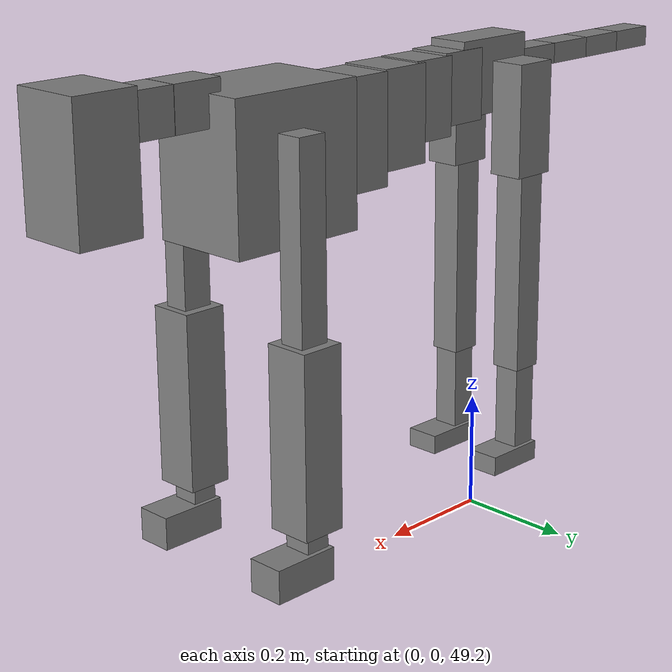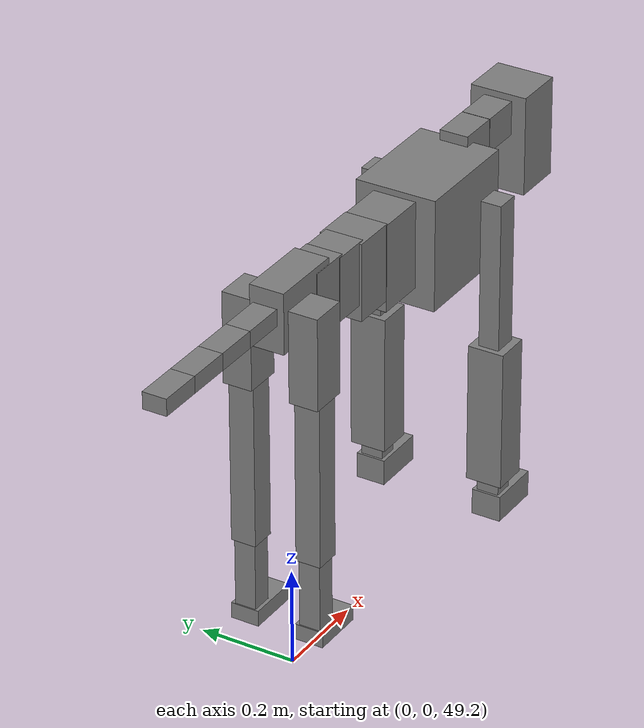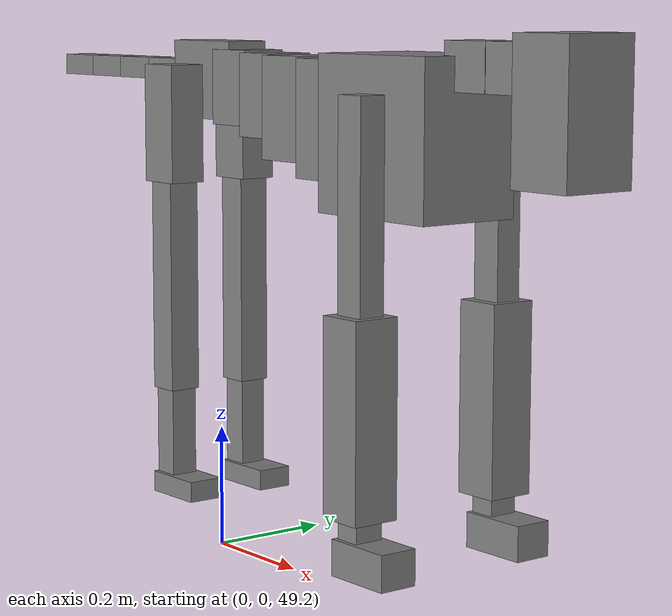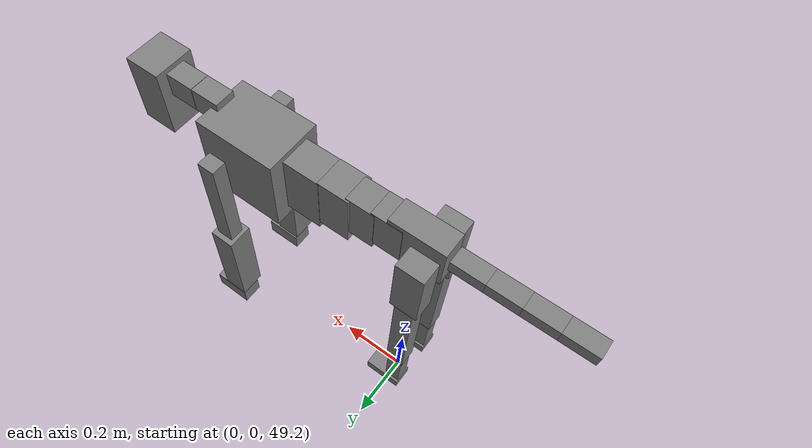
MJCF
<mujoco model="dog">

    <default>
        <joint armature="0.02" stiffness="1" damping="0.2" limited="true"/>
        <geom condim="3" friction="1 0.05 0.05" margin="0.01"/>
        <motor ctrllimited="true" ctrlrange="-1.0 1.0" forcelimited="true" gear="50"/>
    </default>

    <compiler inertiafromgeom="true" angle="radian"/>

    <option timestep="0.016" iterations="50" tolerance="1e-10" solver="Newton" jacobian="dense" cone="pyramidal"/>

    <size nconmax="20000" njmax="60000" nstack="5000000"/>
    <visual>
        <map force="0.1" zfar="30"/>
        <rgba haze="0.15 0.25 0.35 1"/>
        <quality shadowsize="2048"/>
        <global offwidth="800" offheight="800"/>
    </visual>

    <asset>
        <texture type="skybox" builtin="gradient" rgb1="0.3 0.5 0.7" rgb2="0 0 0" width="512" height="512"/>
        <texture name="texplane" type="2d" builtin="checker" rgb1=".2 .3 .4" rgb2=".1 0.15 0.2" width="512" height="512"
                 mark="cross" markrgb=".8 .8 .8"/>
        <texture name="texgeom" type="cube" builtin="flat" mark="cross" width="127" height="1278" rgb1="0.8 0.6 0.4"
                 rgb2="0.8 0.6 0.4" markrgb="1 1 1" random="0.01"/>

        <material name="matplane" reflectance="0.3" texture="texplane" texrepeat="1 1" texuniform="true"/>
        <material name="matgeom" texture="texgeom" texuniform="true" rgba="0.8 0.6 .4 1"/>
    </asset>

    <worldbody>
        <geom name="floor" pos="0 0 0" size="0 0 .25" type="plane" material="matplane" condim="3"/>

        <light directional="false" diffuse=".2 .2 .2" specular="0 0 0" pos="0 0 5" dir="0 0 -1" castshadow="false"/>
        <light mode="targetbodycom" target="torso" directional="false" diffuse=".8 .8 .8" specular="0.3 0.3 0.3"
               pos="0 0 4.0" dir="0 0 -1"/>

        <body name="root" pos="0 0 50">
            <freejoint name="root_1"/>
            <geom type="box" pos="0 0 -0.02" size="0.0774  0.0358  0.063" density="2030"/>

            <body name="spine1" pos="0.054 0 0">
                <joint name="spine1_y" axis="0 1 0" range="0 0.7" limited="true"/>
                <geom type="box" pos="0.02375 0 -0.03" size="0.04375  0.0375  0.05985" density="2030"/>

                <body name="spine2" pos="0.0612 0 0">
                    <joint name="spine2_y" axis="0 1 0" range="-0.15 0.15" limited="true"/>
                    <geom type="box" pos="0.03555  0  -0.04" size="0.04055  0.039  0.06615" density="2030"/>

                    <body name="spine3" pos="0.0730 0 0">
                        <joint name="spine3_y" axis="0 1 0" range="-0.15 0.15" limited="true"/>
                        <geom type="box" pos="0.03555  0  -0.057" size="0.04555  0.0445  0.081" density="2030"/>

                        <body name="spine4" pos="0.0780 0 0">
                            <joint name="spine4_y" axis="0 1 0" range="-0.15 0.15" limited="true"/>
                            <geom type="box" pos="0.05265  0  -0.07" size="0.05265  0.045  0.09135" density="2030"/>

                            <body name="torso" pos="0.1082 0 0">
                                <joint name="torso_y" axis="0 1 0" range="-0.15 0.15" limited="true"/>
                                <geom type="box" pos="0.11925  0  -0.085" size="0.11925  0.085  0.11745"
                                      density="2030"/>

                                <body name="neck1" pos="0.2160  0   0.0180">
                                    <joint name="neck1_y" axis="0 1 0" range="-1.2  -1" limited="true"/>
                                    <geom type="box" pos="0.0423  0  0" size="0.0423  0.03  0.036" density="2325"/>

                                    <body name="neck2" pos="0.0853  0  0">
                                        <joint name="neck2_y" axis="0 1 0" range="0.1  0" limited="true"/>
                                        <geom type="box" pos="0.0423  0  0" size="0.0423  0.03  0.036" density="2325"/>

                                        <body name="head" pos="0.0853  0  0">
                                            <joint name="head_y" axis="0 1 0" range="-0.3  -0.2" limited="true"/>
                                            <geom type="box" pos="0.0531  0  -0.055" size="0.0531  0.06  0.1044"
                                                  density="4030"/>

                                        </body>
                                    </body>
                                </body>

                                <body name="front_shoulder" pos="0.156  0   -0.0480">
                                    <joint name="front_shoulder_y" axis="0 1 0" range="-1 1.5" limited="true"/>
                                    <geom type="box" pos="0 0.13 -0.1427" size="0.0253  0.0216  0.1693" density="1158"/>
                                    <geom type="box" pos="0 -0.13 -0.1427" size="0.0253  0.0216  0.1693"
                                          density="1158"/>

                                    <body name="front_elbow" pos="0  0  -0.2853">
                                        <joint name="front_elbow_y" axis="0 1 0" range="-2 0" limited="true"/>
                                        <geom type="box" pos="0 0.13 -0.1476" size="0.0371  0.0379  0.1476"
                                              density="1081"/>
                                        <geom type="box" pos="0 -0.13 -0.1476" size="0.0371  0.0379  0.1476"
                                              density="1081"/>

                                        <body name="front_wrist" pos="0  0  -0.2952">
                                            <joint name="front_wrist_y" axis="0 1 0" range="-0.2 0" limited="true"/>
                                            <geom type="box" pos="0 0.13 -0.0224" size="0.0210  0.0233  0.0355"
                                                  density="1664"/>
                                            <geom type="box" pos="0 -0.13 -0.0224" size="0.0210  0.0233  0.0355"
                                                  density="1664"/>

                                            <body name="front_finger_end" pos="0  0  -0.0448">
                                                <joint name="front_finger_y" axis="0 1 0" range="-0.4 1"
                                                       limited="true"/>
                                                <geom type="box" pos="0.0308  0.13  -0.0123"
                                                      size="0.0565  0.0308  0.0273" density="1515"/>
                                                <geom type="box" pos="0.0308  -0.13  -0.0123"
                                                      size="0.0565  0.0308  0.0273" density="1515"/>

                                            </body>

                                        </body>
                                    </body>
                                </body>

                            </body>
                        </body>
                    </body>
                </body>
            </body>

            <body name="back_hip" pos="-0.03 0 -0.018">
                <joint name="back_hip_y" axis="0 1 0" range="-1.5 0.3" limited="true"/>
                <geom type="box" pos="0 0.07 -0.0724" size="0.0387  0.0303  0.0952" density="1154"/>
                <geom type="box" pos="0 -0.07 -0.0724" size="0.0387  0.0303  0.0952" density="1154"/>

                <body name="back_knee" pos="0  0  -0.1448">
                    <joint name="back_knee_y" axis="0 1 0" range="0 2.8" limited="true"/>
                    <geom type="box" pos="0 0.07 -0.1749" size="0.0266  0.0262  0.1904" density="1227"/>
                    <geom type="box" pos="0 -0.07 -0.1749" size="0.0266  0.0262  0.1904" density="1227"/>

                    <body name="back_ankle" pos="0  0  -0.3498">
                        <joint name="back_ankle_y" axis="0 1 0" range="-2.2 0" limited="true"/>
                        <geom type="box" pos="0 0.07 -0.0864" size="0.0222  0.0222  0.0977" density="1284"/>
                        <geom type="box" pos="0 -0.07 -0.0864" size="0.0222  0.0222  0.0977" density="1284"/>

                        <body name="back_toe_end" pos="0  0  -0.1729">
                            <joint name="back_toe_y" axis="0 1 0" range="-0.4 1" limited="true"/>
                            <geom type="box" pos="0.0296  0.07  -0.0017" size="0.0543  0.0296  0.0167" density="1515"/>
                            <geom type="box" pos="0.0296  -0.07  -0.0017" size="0.0543  0.0296  0.0167" density="1515"/>

                        </body>
                    </body>
                </body>
            </body>

            <body name="tail1" pos="-0.074 0 -0.006">
                <joint name="tail1_y" axis="0 1 0" range="-0.2 0.2" limited="true"/>
                <geom type="box" pos="-0.0536  0  0" size="0.045  0.025  0.0175" density="1587"/>

                <body name="tail2" pos="-0.09 0 0">
                    <joint name="tail2_y" axis="0 1 0" range="-0.2 0.2" limited="true"/>
                    <geom type="box" pos="-0.0536  0  0" size="0.045  0.025  0.0175" density="1587"/>

                    <body name="tail3" pos="-0.09 0 0">
                        <joint name="tail3_y" axis="0 1 0" range="-0.2 0.2" limited="true"/>
                        <geom type="box" pos="-0.0536  0  0" size="0.045  0.025  0.0175" density="1587"/>

                        <body name="tail4" pos="-0.09 0 0">
                            <joint name="tail4_y" axis="0 1 0" range="-0.2 0.2" limited="true"/>
                            <geom type="box" pos="-0.0536  0  0" size="0.045  0.025  0.0175" density="1587"/>

                        </body>
                    </body>
                </body>
            </body>
        </body>
    </worldbody>

    <actuator>
        <motor joint="spine1_y" forcerange="-150 150     "/>
        <motor joint="spine2_y" forcerange="-150 150     "/>
        <motor joint="spine3_y" forcerange="-150 150     "/>
        <motor joint="spine4_y" forcerange="-150 150     "/>
        <motor joint="torso_y" forcerange="-150 150     "/>
        <motor joint="neck1_y" forcerange="-100 100       "/>
        <motor joint="neck2_y" forcerange="-100 100       "/>
        <motor joint="head_y" forcerange="-150 150       "/>
        <motor joint="front_shoulder_y" forcerange="-142.60 101.58"/>
        <motor joint="front_elbow_y" forcerange="-195.25 180.42"/>
        <motor joint="front_wrist_y" forcerange="-131.03 55.57"/>
        <motor joint="front_finger_y" forcerange="-58.88 65.53"/>
        <motor joint="back_hip_y" forcerange="-220.74 383.69"/>
        <motor joint="back_knee_y" forcerange="-210.92 370.81"/>
        <motor joint="back_angle_y" forcerange="-66.76 189.20"/>
        <motor joint="back_toe_y" forcerange="-69.03 87.89"/>
        <motor joint="tail1_y" forcerange="-50 50     "/>
        <motor joint="tail2_y" forcerange="-50 50     "/>
        <motor joint="tail3_y" forcerange="-50 50     "/>
        <motor joint="tail4_y" forcerange="-50 50     "/>
    </actuator>
</mujoco>
